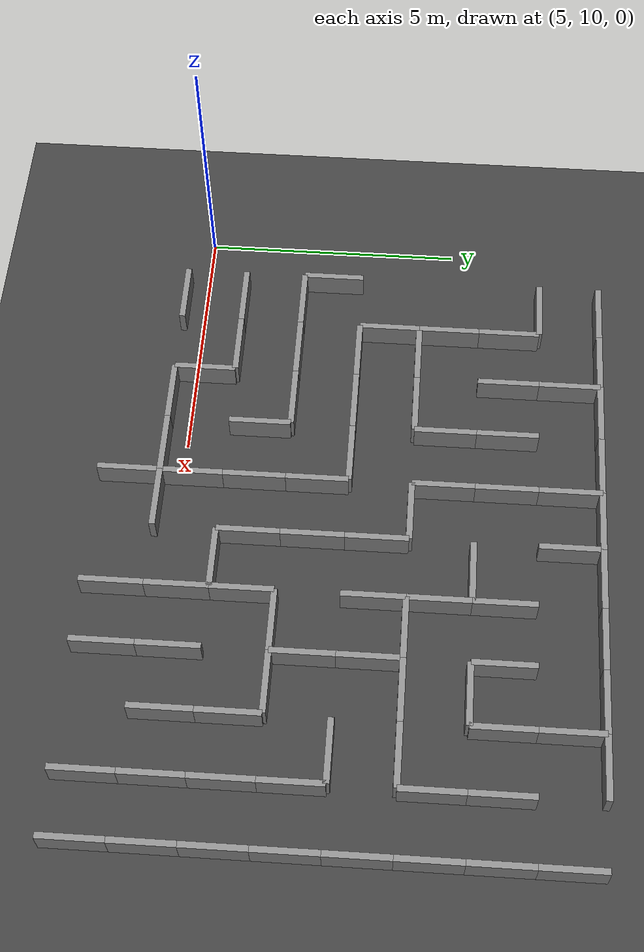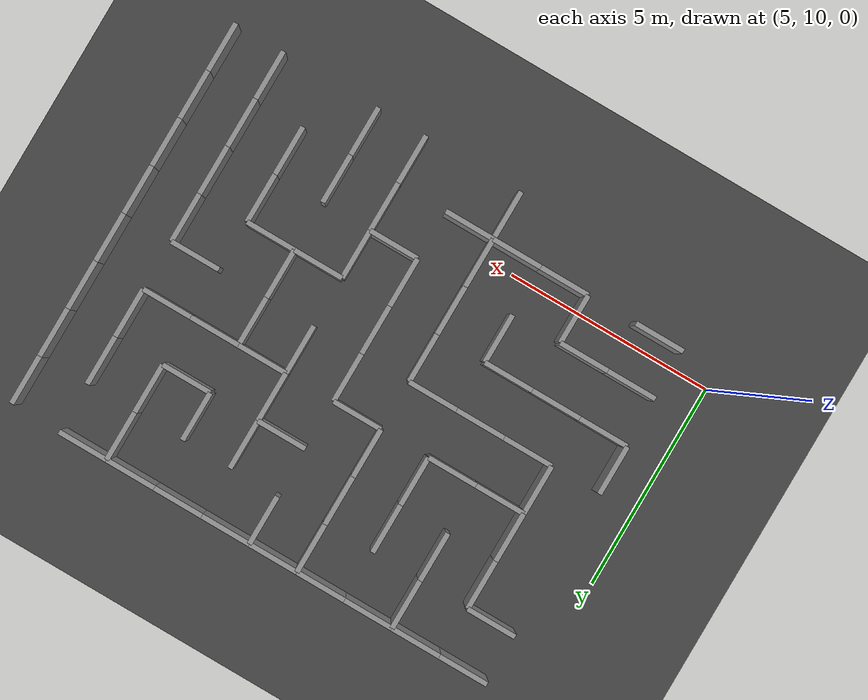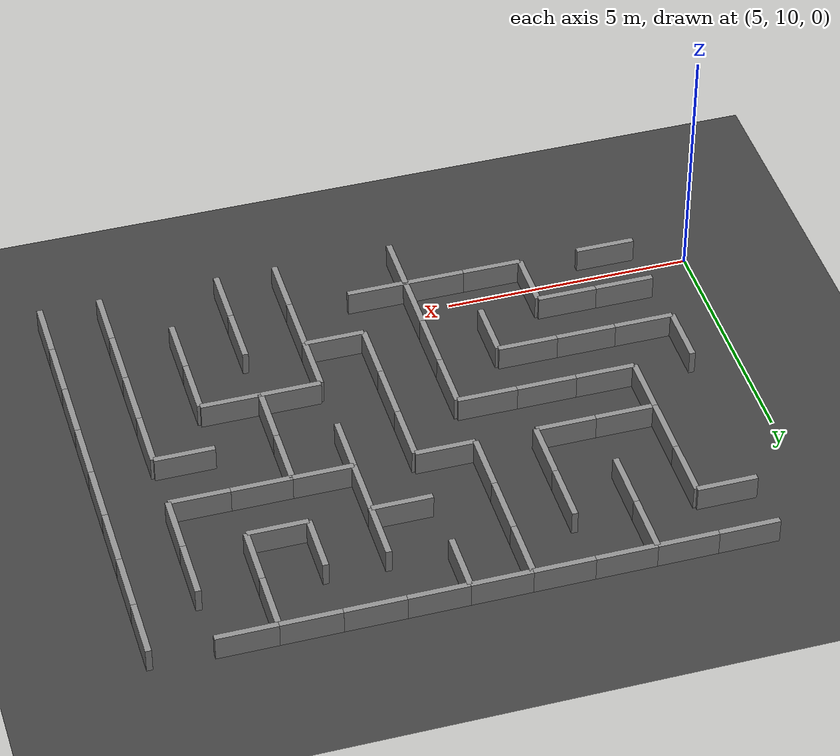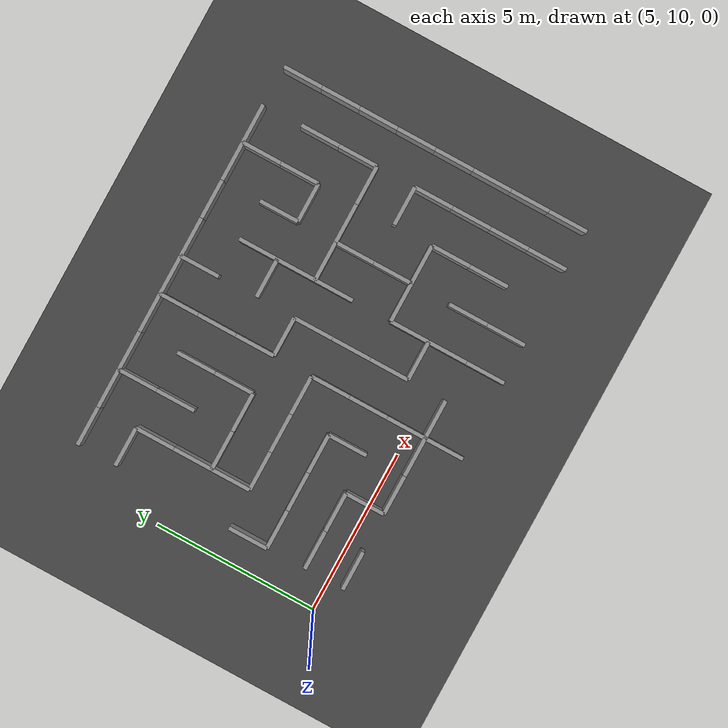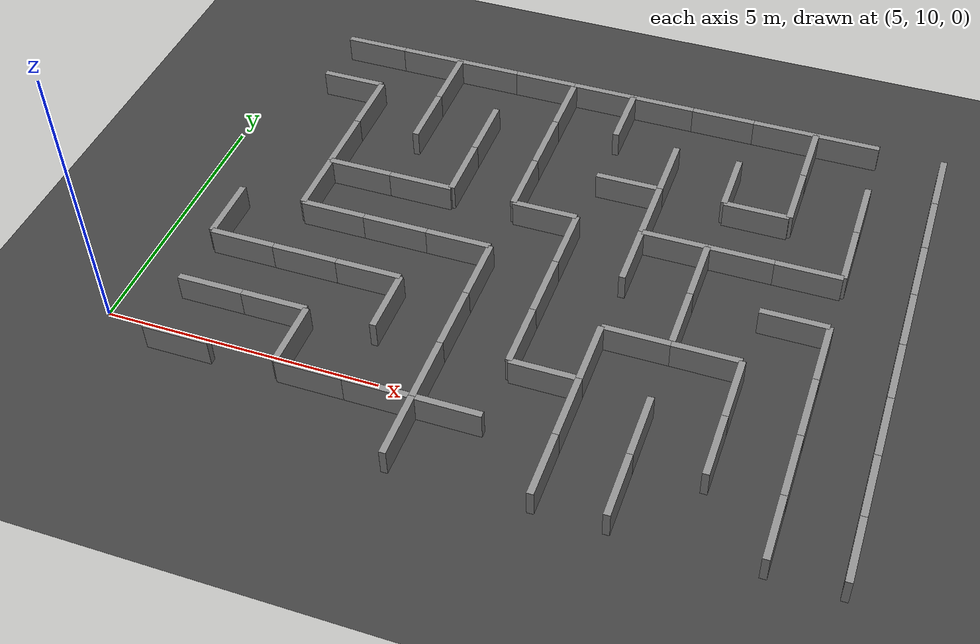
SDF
<sdf version="1.9">
 <world name="maze_world">
  <model name="ground_plane">
   <static>true</static>
   <link name="link">
    <collision name="col">
     <geometry><plane><normal>0 0 1</normal><size>500 500</size></plane></geometry>
     <surface><friction><ode><mu>1.0</mu><mu2>1.0</mu2></ode></friction></surface>
    </collision>
    <visual name="vis">
     <geometry><plane><normal>0 0 1</normal><size>500 500</size></plane></geometry>
     <material><ambient>0.25 0.25 0.25 1</ambient><diffuse>0.25 0.25 0.25 1</diffuse></material>
    </visual>
   </link>
  </model>
  <model name="maze_walls">
   <static>true</static>
   <link name="w0004">
    <pose>6.60000 16.80000 0.25000 0 0 0</pose>
    <collision name="col">
     <geometry><box><size>1.20000 0.12000 0.50000</size></box></geometry>
     <surface><friction><ode><mu>1.0</mu><mu2>1.0</mu2></ode></friction></surface>
    </collision>
    <visual name="vis">
     <geometry><box><size>1.20000 0.12000 0.50000</size></box></geometry>
     <material>
      <ambient>0.55 0.55 0.55 1</ambient>
      <diffuse>0.55 0.55 0.55 1</diffuse>
      <specular>0.1 0.1 0.1 1</specular>
     </material>
    </visual>
   </link>
   <link name="w0005">
    <pose>8.40000 17.40000 0.25000 0 0 0</pose>
    <collision name="col">
     <geometry><box><size>0.12000 1.20000 0.50000</size></box></geometry>
     <surface><friction><ode><mu>1.0</mu><mu2>1.0</mu2></ode></friction></surface>
    </collision>
    <visual name="vis">
     <geometry><box><size>0.12000 1.20000 0.50000</size></box></geometry>
     <material>
      <ambient>0.55 0.55 0.55 1</ambient>
      <diffuse>0.55 0.55 0.55 1</diffuse>
      <specular>0.1 0.1 0.1 1</specular>
     </material>
    </visual>
   </link>
   <link name="w0006">
    <pose>10.80000 17.40000 0.25000 0 0 0</pose>
    <collision name="col">
     <geometry><box><size>0.12000 1.20000 0.50000</size></box></geometry>
     <surface><friction><ode><mu>1.0</mu><mu2>1.0</mu2></ode></friction></surface>
    </collision>
    <visual name="vis">
     <geometry><box><size>0.12000 1.20000 0.50000</size></box></geometry>
     <material>
      <ambient>0.55 0.55 0.55 1</ambient>
      <diffuse>0.55 0.55 0.55 1</diffuse>
      <specular>0.1 0.1 0.1 1</specular>
     </material>
    </visual>
   </link>
   <link name="w0007">
    <pose>12.00000 17.40000 0.25000 0 0 0</pose>
    <collision name="col">
     <geometry><box><size>0.12000 1.20000 0.50000</size></box></geometry>
     <surface><friction><ode><mu>1.0</mu><mu2>1.0</mu2></ode></friction></surface>
    </collision>
    <visual name="vis">
     <geometry><box><size>0.12000 1.20000 0.50000</size></box></geometry>
     <material>
      <ambient>0.55 0.55 0.55 1</ambient>
      <diffuse>0.55 0.55 0.55 1</diffuse>
      <specular>0.1 0.1 0.1 1</specular>
     </material>
    </visual>
   </link>
   <link name="w0008">
    <pose>15.60000 17.40000 0.25000 0 0 0</pose>
    <collision name="col">
     <geometry><box><size>0.12000 1.20000 0.50000</size></box></geometry>
     <surface><friction><ode><mu>1.0</mu><mu2>1.0</mu2></ode></friction></surface>
    </collision>
    <visual name="vis">
     <geometry><box><size>0.12000 1.20000 0.50000</size></box></geometry>
     <material>
      <ambient>0.55 0.55 0.55 1</ambient>
      <diffuse>0.55 0.55 0.55 1</diffuse>
      <specular>0.1 0.1 0.1 1</specular>
     </material>
    </visual>
   </link>
   <link name="w0009">
    <pose>18.00000 17.40000 0.25000 0 0 0</pose>
    <collision name="col">
     <geometry><box><size>0.12000 1.20000 0.50000</size></box></geometry>
     <surface><friction><ode><mu>1.0</mu><mu2>1.0</mu2></ode></friction></surface>
    </collision>
    <visual name="vis">
     <geometry><box><size>0.12000 1.20000 0.50000</size></box></geometry>
     <material>
      <ambient>0.55 0.55 0.55 1</ambient>
      <diffuse>0.55 0.55 0.55 1</diffuse>
      <specular>0.1 0.1 0.1 1</specular>
     </material>
    </visual>
   </link>
   <link name="w0014">
    <pose>7.20000 16.20000 0.25000 0 0 0</pose>
    <collision name="col">
     <geometry><box><size>0.12000 1.20000 0.50000</size></box></geometry>
     <surface><friction><ode><mu>1.0</mu><mu2>1.0</mu2></ode></friction></surface>
    </collision>
    <visual name="vis">
     <geometry><box><size>0.12000 1.20000 0.50000</size></box></geometry>
     <material>
      <ambient>0.55 0.55 0.55 1</ambient>
      <diffuse>0.55 0.55 0.55 1</diffuse>
      <specular>0.1 0.1 0.1 1</specular>
     </material>
    </visual>
   </link>
   <link name="w0015">
    <pose>8.40000 16.20000 0.25000 0 0 0</pose>
    <collision name="col">
     <geometry><box><size>0.12000 1.20000 0.50000</size></box></geometry>
     <surface><friction><ode><mu>1.0</mu><mu2>1.0</mu2></ode></friction></surface>
    </collision>
    <visual name="vis">
     <geometry><box><size>0.12000 1.20000 0.50000</size></box></geometry>
     <material>
      <ambient>0.55 0.55 0.55 1</ambient>
      <diffuse>0.55 0.55 0.55 1</diffuse>
      <specular>0.1 0.1 0.1 1</specular>
     </material>
    </visual>
   </link>
   <link name="w0016">
    <pose>9.60000 16.20000 0.25000 0 0 0</pose>
    <collision name="col">
     <geometry><box><size>0.12000 1.20000 0.50000</size></box></geometry>
     <surface><friction><ode><mu>1.0</mu><mu2>1.0</mu2></ode></friction></surface>
    </collision>
    <visual name="vis">
     <geometry><box><size>0.12000 1.20000 0.50000</size></box></geometry>
     <material>
      <ambient>0.55 0.55 0.55 1</ambient>
      <diffuse>0.55 0.55 0.55 1</diffuse>
      <specular>0.1 0.1 0.1 1</specular>
     </material>
    </visual>
   </link>
   <link name="w0017">
    <pose>10.80000 16.20000 0.25000 0 0 0</pose>
    <collision name="col">
     <geometry><box><size>0.12000 1.20000 0.50000</size></box></geometry>
     <surface><friction><ode><mu>1.0</mu><mu2>1.0</mu2></ode></friction></surface>
    </collision>
    <visual name="vis">
     <geometry><box><size>0.12000 1.20000 0.50000</size></box></geometry>
     <material>
      <ambient>0.55 0.55 0.55 1</ambient>
      <diffuse>0.55 0.55 0.55 1</diffuse>
      <specular>0.1 0.1 0.1 1</specular>
     </material>
    </visual>
   </link>
   <link name="w0018">
    <pose>12.60000 15.60000 0.25000 0 0 0</pose>
    <collision name="col">
     <geometry><box><size>1.20000 0.12000 0.50000</size></box></geometry>
     <surface><friction><ode><mu>1.0</mu><mu2>1.0</mu2></ode></friction></surface>
    </collision>
    <visual name="vis">
     <geometry><box><size>1.20000 0.12000 0.50000</size></box></geometry>
     <material>
      <ambient>0.55 0.55 0.55 1</ambient>
      <diffuse>0.55 0.55 0.55 1</diffuse>
      <specular>0.1 0.1 0.1 1</specular>
     </material>
    </visual>
   </link>
   <link name="w0019">
    <pose>13.20000 16.20000 0.25000 0 0 0</pose>
    <collision name="col">
     <geometry><box><size>0.12000 1.20000 0.50000</size></box></geometry>
     <surface><friction><ode><mu>1.0</mu><mu2>1.0</mu2></ode></friction></surface>
    </collision>
    <visual name="vis">
     <geometry><box><size>0.12000 1.20000 0.50000</size></box></geometry>
     <material>
      <ambient>0.55 0.55 0.55 1</ambient>
      <diffuse>0.55 0.55 0.55 1</diffuse>
      <specular>0.1 0.1 0.1 1</specular>
     </material>
    </visual>
   </link>
   <link name="w0020">
    <pose>14.40000 16.20000 0.25000 0 0 0</pose>
    <collision name="col">
     <geometry><box><size>0.12000 1.20000 0.50000</size></box></geometry>
     <surface><friction><ode><mu>1.0</mu><mu2>1.0</mu2></ode></friction></surface>
    </collision>
    <visual name="vis">
     <geometry><box><size>0.12000 1.20000 0.50000</size></box></geometry>
     <material>
      <ambient>0.55 0.55 0.55 1</ambient>
      <diffuse>0.55 0.55 0.55 1</diffuse>
      <specular>0.1 0.1 0.1 1</specular>
     </material>
    </visual>
   </link>
   <link name="w0021">
    <pose>15.00000 15.60000 0.25000 0 0 0</pose>
    <collision name="col">
     <geometry><box><size>1.20000 0.12000 0.50000</size></box></geometry>
     <surface><friction><ode><mu>1.0</mu><mu2>1.0</mu2></ode></friction></surface>
    </collision>
    <visual name="vis">
     <geometry><box><size>1.20000 0.12000 0.50000</size></box></geometry>
     <material>
      <ambient>0.55 0.55 0.55 1</ambient>
      <diffuse>0.55 0.55 0.55 1</diffuse>
      <specular>0.1 0.1 0.1 1</specular>
     </material>
    </visual>
   </link>
   <link name="w0022">
    <pose>15.60000 16.20000 0.25000 0 0 0</pose>
    <collision name="col">
     <geometry><box><size>0.12000 1.20000 0.50000</size></box></geometry>
     <surface><friction><ode><mu>1.0</mu><mu2>1.0</mu2></ode></friction></surface>
    </collision>
    <visual name="vis">
     <geometry><box><size>0.12000 1.20000 0.50000</size></box></geometry>
     <material>
      <ambient>0.55 0.55 0.55 1</ambient>
      <diffuse>0.55 0.55 0.55 1</diffuse>
      <specular>0.1 0.1 0.1 1</specular>
     </material>
    </visual>
   </link>
   <link name="w0023">
    <pose>16.80000 16.20000 0.25000 0 0 0</pose>
    <collision name="col">
     <geometry><box><size>0.12000 1.20000 0.50000</size></box></geometry>
     <surface><friction><ode><mu>1.0</mu><mu2>1.0</mu2></ode></friction></surface>
    </collision>
    <visual name="vis">
     <geometry><box><size>0.12000 1.20000 0.50000</size></box></geometry>
     <material>
      <ambient>0.55 0.55 0.55 1</ambient>
      <diffuse>0.55 0.55 0.55 1</diffuse>
      <specular>0.1 0.1 0.1 1</specular>
     </material>
    </visual>
   </link>
   <link name="w0024">
    <pose>18.00000 16.20000 0.25000 0 0 0</pose>
    <collision name="col">
     <geometry><box><size>0.12000 1.20000 0.50000</size></box></geometry>
     <surface><friction><ode><mu>1.0</mu><mu2>1.0</mu2></ode></friction></surface>
    </collision>
    <visual name="vis">
     <geometry><box><size>0.12000 1.20000 0.50000</size></box></geometry>
     <material>
      <ambient>0.55 0.55 0.55 1</ambient>
      <diffuse>0.55 0.55 0.55 1</diffuse>
      <specular>0.1 0.1 0.1 1</specular>
     </material>
    </visual>
   </link>
   <link name="w0030">
    <pose>7.20000 15.00000 0.25000 0 0 0</pose>
    <collision name="col">
     <geometry><box><size>0.12000 1.20000 0.50000</size></box></geometry>
     <surface><friction><ode><mu>1.0</mu><mu2>1.0</mu2></ode></friction></surface>
    </collision>
    <visual name="vis">
     <geometry><box><size>0.12000 1.20000 0.50000</size></box></geometry>
     <material>
      <ambient>0.55 0.55 0.55 1</ambient>
      <diffuse>0.55 0.55 0.55 1</diffuse>
      <specular>0.1 0.1 0.1 1</specular>
     </material>
    </visual>
   </link>
   <link name="w0031">
    <pose>7.80000 14.40000 0.25000 0 0 0</pose>
    <collision name="col">
     <geometry><box><size>1.20000 0.12000 0.50000</size></box></geometry>
     <surface><friction><ode><mu>1.0</mu><mu2>1.0</mu2></ode></friction></surface>
    </collision>
    <visual name="vis">
     <geometry><box><size>1.20000 0.12000 0.50000</size></box></geometry>
     <material>
      <ambient>0.55 0.55 0.55 1</ambient>
      <diffuse>0.55 0.55 0.55 1</diffuse>
      <specular>0.1 0.1 0.1 1</specular>
     </material>
    </visual>
   </link>
   <link name="w0032">
    <pose>9.00000 14.40000 0.25000 0 0 0</pose>
    <collision name="col">
     <geometry><box><size>1.20000 0.12000 0.50000</size></box></geometry>
     <surface><friction><ode><mu>1.0</mu><mu2>1.0</mu2></ode></friction></surface>
    </collision>
    <visual name="vis">
     <geometry><box><size>1.20000 0.12000 0.50000</size></box></geometry>
     <material>
      <ambient>0.55 0.55 0.55 1</ambient>
      <diffuse>0.55 0.55 0.55 1</diffuse>
      <specular>0.1 0.1 0.1 1</specular>
     </material>
    </visual>
   </link>
   <link name="w0033">
    <pose>9.60000 15.00000 0.25000 0 0 0</pose>
    <collision name="col">
     <geometry><box><size>0.12000 1.20000 0.50000</size></box></geometry>
     <surface><friction><ode><mu>1.0</mu><mu2>1.0</mu2></ode></friction></surface>
    </collision>
    <visual name="vis">
     <geometry><box><size>0.12000 1.20000 0.50000</size></box></geometry>
     <material>
      <ambient>0.55 0.55 0.55 1</ambient>
      <diffuse>0.55 0.55 0.55 1</diffuse>
      <specular>0.1 0.1 0.1 1</specular>
     </material>
    </visual>
   </link>
   <link name="w0034">
    <pose>10.80000 15.00000 0.25000 0 0 0</pose>
    <collision name="col">
     <geometry><box><size>0.12000 1.20000 0.50000</size></box></geometry>
     <surface><friction><ode><mu>1.0</mu><mu2>1.0</mu2></ode></friction></surface>
    </collision>
    <visual name="vis">
     <geometry><box><size>0.12000 1.20000 0.50000</size></box></geometry>
     <material>
      <ambient>0.55 0.55 0.55 1</ambient>
      <diffuse>0.55 0.55 0.55 1</diffuse>
      <specular>0.1 0.1 0.1 1</specular>
     </material>
    </visual>
   </link>
   <link name="w0035">
    <pose>11.40000 14.40000 0.25000 0 0 0</pose>
    <collision name="col">
     <geometry><box><size>1.20000 0.12000 0.50000</size></box></geometry>
     <surface><friction><ode><mu>1.0</mu><mu2>1.0</mu2></ode></friction></surface>
    </collision>
    <visual name="vis">
     <geometry><box><size>1.20000 0.12000 0.50000</size></box></geometry>
     <material>
      <ambient>0.55 0.55 0.55 1</ambient>
      <diffuse>0.55 0.55 0.55 1</diffuse>
      <specular>0.1 0.1 0.1 1</specular>
     </material>
    </visual>
   </link>
   <link name="w0036">
    <pose>13.20000 15.00000 0.25000 0 0 0</pose>
    <collision name="col">
     <geometry><box><size>0.12000 1.20000 0.50000</size></box></geometry>
     <surface><friction><ode><mu>1.0</mu><mu2>1.0</mu2></ode></friction></surface>
    </collision>
    <visual name="vis">
     <geometry><box><size>0.12000 1.20000 0.50000</size></box></geometry>
     <material>
      <ambient>0.55 0.55 0.55 1</ambient>
      <diffuse>0.55 0.55 0.55 1</diffuse>
      <specular>0.1 0.1 0.1 1</specular>
     </material>
    </visual>
   </link>
   <link name="w0037">
    <pose>13.80000 14.40000 0.25000 0 0 0</pose>
    <collision name="col">
     <geometry><box><size>1.20000 0.12000 0.50000</size></box></geometry>
     <surface><friction><ode><mu>1.0</mu><mu2>1.0</mu2></ode></friction></surface>
    </collision>
    <visual name="vis">
     <geometry><box><size>1.20000 0.12000 0.50000</size></box></geometry>
     <material>
      <ambient>0.55 0.55 0.55 1</ambient>
      <diffuse>0.55 0.55 0.55 1</diffuse>
      <specular>0.1 0.1 0.1 1</specular>
     </material>
    </visual>
   </link>
   <link name="w0038">
    <pose>15.00000 14.40000 0.25000 0 0 0</pose>
    <collision name="col">
     <geometry><box><size>1.20000 0.12000 0.50000</size></box></geometry>
     <surface><friction><ode><mu>1.0</mu><mu2>1.0</mu2></ode></friction></surface>
    </collision>
    <visual name="vis">
     <geometry><box><size>1.20000 0.12000 0.50000</size></box></geometry>
     <material>
      <ambient>0.55 0.55 0.55 1</ambient>
      <diffuse>0.55 0.55 0.55 1</diffuse>
      <specular>0.1 0.1 0.1 1</specular>
     </material>
    </visual>
   </link>
   <link name="w0039">
    <pose>16.20000 14.40000 0.25000 0 0 0</pose>
    <collision name="col">
     <geometry><box><size>1.20000 0.12000 0.50000</size></box></geometry>
     <surface><friction><ode><mu>1.0</mu><mu2>1.0</mu2></ode></friction></surface>
    </collision>
    <visual name="vis">
     <geometry><box><size>1.20000 0.12000 0.50000</size></box></geometry>
     <material>
      <ambient>0.55 0.55 0.55 1</ambient>
      <diffuse>0.55 0.55 0.55 1</diffuse>
      <specular>0.1 0.1 0.1 1</specular>
     </material>
    </visual>
   </link>
   <link name="w0040">
    <pose>16.80000 15.00000 0.25000 0 0 0</pose>
    <collision name="col">
     <geometry><box><size>0.12000 1.20000 0.50000</size></box></geometry>
     <surface><friction><ode><mu>1.0</mu><mu2>1.0</mu2></ode></friction></surface>
    </collision>
    <visual name="vis">
     <geometry><box><size>0.12000 1.20000 0.50000</size></box></geometry>
     <material>
      <ambient>0.55 0.55 0.55 1</ambient>
      <diffuse>0.55 0.55 0.55 1</diffuse>
      <specular>0.1 0.1 0.1 1</specular>
     </material>
    </visual>
   </link>
   <link name="w0041">
    <pose>18.00000 15.00000 0.25000 0 0 0</pose>
    <collision name="col">
     <geometry><box><size>0.12000 1.20000 0.50000</size></box></geometry>
     <surface><friction><ode><mu>1.0</mu><mu2>1.0</mu2></ode></friction></surface>
    </collision>
    <visual name="vis">
     <geometry><box><size>0.12000 1.20000 0.50000</size></box></geometry>
     <material>
      <ambient>0.55 0.55 0.55 1</ambient>
      <diffuse>0.55 0.55 0.55 1</diffuse>
      <specular>0.1 0.1 0.1 1</specular>
     </material>
    </visual>
   </link>
   <link name="w0047">
    <pose>7.20000 13.80000 0.25000 0 0 0</pose>
    <collision name="col">
     <geometry><box><size>0.12000 1.20000 0.50000</size></box></geometry>
     <surface><friction><ode><mu>1.0</mu><mu2>1.0</mu2></ode></friction></surface>
    </collision>
    <visual name="vis">
     <geometry><box><size>0.12000 1.20000 0.50000</size></box></geometry>
     <material>
      <ambient>0.55 0.55 0.55 1</ambient>
      <diffuse>0.55 0.55 0.55 1</diffuse>
      <specular>0.1 0.1 0.1 1</specular>
     </material>
    </visual>
   </link>
   <link name="w0048">
    <pose>7.80000 13.20000 0.25000 0 0 0</pose>
    <collision name="col">
     <geometry><box><size>1.20000 0.12000 0.50000</size></box></geometry>
     <surface><friction><ode><mu>1.0</mu><mu2>1.0</mu2></ode></friction></surface>
    </collision>
    <visual name="vis">
     <geometry><box><size>1.20000 0.12000 0.50000</size></box></geometry>
     <material>
      <ambient>0.55 0.55 0.55 1</ambient>
      <diffuse>0.55 0.55 0.55 1</diffuse>
      <specular>0.1 0.1 0.1 1</specular>
     </material>
    </visual>
   </link>
   <link name="w0049">
    <pose>9.00000 13.20000 0.25000 0 0 0</pose>
    <collision name="col">
     <geometry><box><size>1.20000 0.12000 0.50000</size></box></geometry>
     <surface><friction><ode><mu>1.0</mu><mu2>1.0</mu2></ode></friction></surface>
    </collision>
    <visual name="vis">
     <geometry><box><size>1.20000 0.12000 0.50000</size></box></geometry>
     <material>
      <ambient>0.55 0.55 0.55 1</ambient>
      <diffuse>0.55 0.55 0.55 1</diffuse>
      <specular>0.1 0.1 0.1 1</specular>
     </material>
    </visual>
   </link>
   <link name="w0050">
    <pose>10.20000 13.20000 0.25000 0 0 0</pose>
    <collision name="col">
     <geometry><box><size>1.20000 0.12000 0.50000</size></box></geometry>
     <surface><friction><ode><mu>1.0</mu><mu2>1.0</mu2></ode></friction></surface>
    </collision>
    <visual name="vis">
     <geometry><box><size>1.20000 0.12000 0.50000</size></box></geometry>
     <material>
      <ambient>0.55 0.55 0.55 1</ambient>
      <diffuse>0.55 0.55 0.55 1</diffuse>
      <specular>0.1 0.1 0.1 1</specular>
     </material>
    </visual>
   </link>
   <link name="w0051">
    <pose>12.00000 13.80000 0.25000 0 0 0</pose>
    <collision name="col">
     <geometry><box><size>0.12000 1.20000 0.50000</size></box></geometry>
     <surface><friction><ode><mu>1.0</mu><mu2>1.0</mu2></ode></friction></surface>
    </collision>
    <visual name="vis">
     <geometry><box><size>0.12000 1.20000 0.50000</size></box></geometry>
     <material>
      <ambient>0.55 0.55 0.55 1</ambient>
      <diffuse>0.55 0.55 0.55 1</diffuse>
      <specular>0.1 0.1 0.1 1</specular>
     </material>
    </visual>
   </link>
   <link name="w0052">
    <pose>13.20000 13.80000 0.25000 0 0 0</pose>
    <collision name="col">
     <geometry><box><size>0.12000 1.20000 0.50000</size></box></geometry>
     <surface><friction><ode><mu>1.0</mu><mu2>1.0</mu2></ode></friction></surface>
    </collision>
    <visual name="vis">
     <geometry><box><size>0.12000 1.20000 0.50000</size></box></geometry>
     <material>
      <ambient>0.55 0.55 0.55 1</ambient>
      <diffuse>0.55 0.55 0.55 1</diffuse>
      <specular>0.1 0.1 0.1 1</specular>
     </material>
    </visual>
   </link>
   <link name="w0053">
    <pose>14.40000 13.80000 0.25000 0 0 0</pose>
    <collision name="col">
     <geometry><box><size>0.12000 1.20000 0.50000</size></box></geometry>
     <surface><friction><ode><mu>1.0</mu><mu2>1.0</mu2></ode></friction></surface>
    </collision>
    <visual name="vis">
     <geometry><box><size>0.12000 1.20000 0.50000</size></box></geometry>
     <material>
      <ambient>0.55 0.55 0.55 1</ambient>
      <diffuse>0.55 0.55 0.55 1</diffuse>
      <specular>0.1 0.1 0.1 1</specular>
     </material>
    </visual>
   </link>
   <link name="w0054">
    <pose>16.20000 13.20000 0.25000 0 0 0</pose>
    <collision name="col">
     <geometry><box><size>1.20000 0.12000 0.50000</size></box></geometry>
     <surface><friction><ode><mu>1.0</mu><mu2>1.0</mu2></ode></friction></surface>
    </collision>
    <visual name="vis">
     <geometry><box><size>1.20000 0.12000 0.50000</size></box></geometry>
     <material>
      <ambient>0.55 0.55 0.55 1</ambient>
      <diffuse>0.55 0.55 0.55 1</diffuse>
      <specular>0.1 0.1 0.1 1</specular>
     </material>
    </visual>
   </link>
   <link name="w0055">
    <pose>18.00000 13.80000 0.25000 0 0 0</pose>
    <collision name="col">
     <geometry><box><size>0.12000 1.20000 0.50000</size></box></geometry>
     <surface><friction><ode><mu>1.0</mu><mu2>1.0</mu2></ode></friction></surface>
    </collision>
    <visual name="vis">
     <geometry><box><size>0.12000 1.20000 0.50000</size></box></geometry>
     <material>
      <ambient>0.55 0.55 0.55 1</ambient>
      <diffuse>0.55 0.55 0.55 1</diffuse>
      <specular>0.1 0.1 0.1 1</specular>
     </material>
    </visual>
   </link>
   <link name="w0061">
    <pose>6.00000 12.60000 0.25000 0 0 0</pose>
    <collision name="col">
     <geometry><box><size>0.12000 1.20000 0.50000</size></box></geometry>
     <surface><friction><ode><mu>1.0</mu><mu2>1.0</mu2></ode></friction></surface>
    </collision>
    <visual name="vis">
     <geometry><box><size>0.12000 1.20000 0.50000</size></box></geometry>
     <material>
      <ambient>0.55 0.55 0.55 1</ambient>
      <diffuse>0.55 0.55 0.55 1</diffuse>
      <specular>0.1 0.1 0.1 1</specular>
     </material>
    </visual>
   </link>
   <link name="w0062">
    <pose>6.60000 12.00000 0.25000 0 0 0</pose>
    <collision name="col">
     <geometry><box><size>1.20000 0.12000 0.50000</size></box></geometry>
     <surface><friction><ode><mu>1.0</mu><mu2>1.0</mu2></ode></friction></surface>
    </collision>
    <visual name="vis">
     <geometry><box><size>1.20000 0.12000 0.50000</size></box></geometry>
     <material>
      <ambient>0.55 0.55 0.55 1</ambient>
      <diffuse>0.55 0.55 0.55 1</diffuse>
      <specular>0.1 0.1 0.1 1</specular>
     </material>
    </visual>
   </link>
   <link name="w0063">
    <pose>7.80000 12.00000 0.25000 0 0 0</pose>
    <collision name="col">
     <geometry><box><size>1.20000 0.12000 0.50000</size></box></geometry>
     <surface><friction><ode><mu>1.0</mu><mu2>1.0</mu2></ode></friction></surface>
    </collision>
    <visual name="vis">
     <geometry><box><size>1.20000 0.12000 0.50000</size></box></geometry>
     <material>
      <ambient>0.55 0.55 0.55 1</ambient>
      <diffuse>0.55 0.55 0.55 1</diffuse>
      <specular>0.1 0.1 0.1 1</specular>
     </material>
    </visual>
   </link>
   <link name="w0064">
    <pose>9.00000 12.00000 0.25000 0 0 0</pose>
    <collision name="col">
     <geometry><box><size>1.20000 0.12000 0.50000</size></box></geometry>
     <surface><friction><ode><mu>1.0</mu><mu2>1.0</mu2></ode></friction></surface>
    </collision>
    <visual name="vis">
     <geometry><box><size>1.20000 0.12000 0.50000</size></box></geometry>
     <material>
      <ambient>0.55 0.55 0.55 1</ambient>
      <diffuse>0.55 0.55 0.55 1</diffuse>
      <specular>0.1 0.1 0.1 1</specular>
     </material>
    </visual>
   </link>
   <link name="w0065">
    <pose>10.80000 12.60000 0.25000 0 0 0</pose>
    <collision name="col">
     <geometry><box><size>0.12000 1.20000 0.50000</size></box></geometry>
     <surface><friction><ode><mu>1.0</mu><mu2>1.0</mu2></ode></friction></surface>
    </collision>
    <visual name="vis">
     <geometry><box><size>0.12000 1.20000 0.50000</size></box></geometry>
     <material>
      <ambient>0.55 0.55 0.55 1</ambient>
      <diffuse>0.55 0.55 0.55 1</diffuse>
      <specular>0.1 0.1 0.1 1</specular>
     </material>
    </visual>
   </link>
   <link name="w0066">
    <pose>12.00000 12.60000 0.25000 0 0 0</pose>
    <collision name="col">
     <geometry><box><size>0.12000 1.20000 0.50000</size></box></geometry>
     <surface><friction><ode><mu>1.0</mu><mu2>1.0</mu2></ode></friction></surface>
    </collision>
    <visual name="vis">
     <geometry><box><size>0.12000 1.20000 0.50000</size></box></geometry>
     <material>
      <ambient>0.55 0.55 0.55 1</ambient>
      <diffuse>0.55 0.55 0.55 1</diffuse>
      <specular>0.1 0.1 0.1 1</specular>
     </material>
    </visual>
   </link>
   <link name="w0067">
    <pose>13.80000 12.00000 0.25000 0 0 0</pose>
    <collision name="col">
     <geometry><box><size>1.20000 0.12000 0.50000</size></box></geometry>
     <surface><friction><ode><mu>1.0</mu><mu2>1.0</mu2></ode></friction></surface>
    </collision>
    <visual name="vis">
     <geometry><box><size>1.20000 0.12000 0.50000</size></box></geometry>
     <material>
      <ambient>0.55 0.55 0.55 1</ambient>
      <diffuse>0.55 0.55 0.55 1</diffuse>
      <specular>0.1 0.1 0.1 1</specular>
     </material>
    </visual>
   </link>
   <link name="w0068">
    <pose>14.40000 12.60000 0.25000 0 0 0</pose>
    <collision name="col">
     <geometry><box><size>0.12000 1.20000 0.50000</size></box></geometry>
     <surface><friction><ode><mu>1.0</mu><mu2>1.0</mu2></ode></friction></surface>
    </collision>
    <visual name="vis">
     <geometry><box><size>0.12000 1.20000 0.50000</size></box></geometry>
     <material>
      <ambient>0.55 0.55 0.55 1</ambient>
      <diffuse>0.55 0.55 0.55 1</diffuse>
      <specular>0.1 0.1 0.1 1</specular>
     </material>
    </visual>
   </link>
   <link name="w0069">
    <pose>15.00000 12.00000 0.25000 0 0 0</pose>
    <collision name="col">
     <geometry><box><size>1.20000 0.12000 0.50000</size></box></geometry>
     <surface><friction><ode><mu>1.0</mu><mu2>1.0</mu2></ode></friction></surface>
    </collision>
    <visual name="vis">
     <geometry><box><size>1.20000 0.12000 0.50000</size></box></geometry>
     <material>
      <ambient>0.55 0.55 0.55 1</ambient>
      <diffuse>0.55 0.55 0.55 1</diffuse>
      <specular>0.1 0.1 0.1 1</specular>
     </material>
    </visual>
   </link>
   <link name="w0070">
    <pose>16.80000 12.60000 0.25000 0 0 0</pose>
    <collision name="col">
     <geometry><box><size>0.12000 1.20000 0.50000</size></box></geometry>
     <surface><friction><ode><mu>1.0</mu><mu2>1.0</mu2></ode></friction></surface>
    </collision>
    <visual name="vis">
     <geometry><box><size>0.12000 1.20000 0.50000</size></box></geometry>
     <material>
      <ambient>0.55 0.55 0.55 1</ambient>
      <diffuse>0.55 0.55 0.55 1</diffuse>
      <specular>0.1 0.1 0.1 1</specular>
     </material>
    </visual>
   </link>
   <link name="w0071">
    <pose>18.00000 12.60000 0.25000 0 0 0</pose>
    <collision name="col">
     <geometry><box><size>0.12000 1.20000 0.50000</size></box></geometry>
     <surface><friction><ode><mu>1.0</mu><mu2>1.0</mu2></ode></friction></surface>
    </collision>
    <visual name="vis">
     <geometry><box><size>0.12000 1.20000 0.50000</size></box></geometry>
     <material>
      <ambient>0.55 0.55 0.55 1</ambient>
      <diffuse>0.55 0.55 0.55 1</diffuse>
      <specular>0.1 0.1 0.1 1</specular>
     </material>
    </visual>
   </link>
   <link name="w0077">
    <pose>6.60000 10.80000 0.25000 0 0 0</pose>
    <collision name="col">
     <geometry><box><size>1.20000 0.12000 0.50000</size></box></geometry>
     <surface><friction><ode><mu>1.0</mu><mu2>1.0</mu2></ode></friction></surface>
    </collision>
    <visual name="vis">
     <geometry><box><size>1.20000 0.12000 0.50000</size></box></geometry>
     <material>
      <ambient>0.55 0.55 0.55 1</ambient>
      <diffuse>0.55 0.55 0.55 1</diffuse>
      <specular>0.1 0.1 0.1 1</specular>
     </material>
    </visual>
   </link>
   <link name="w0078">
    <pose>7.80000 10.80000 0.25000 0 0 0</pose>
    <collision name="col">
     <geometry><box><size>1.20000 0.12000 0.50000</size></box></geometry>
     <surface><friction><ode><mu>1.0</mu><mu2>1.0</mu2></ode></friction></surface>
    </collision>
    <visual name="vis">
     <geometry><box><size>1.20000 0.12000 0.50000</size></box></geometry>
     <material>
      <ambient>0.55 0.55 0.55 1</ambient>
      <diffuse>0.55 0.55 0.55 1</diffuse>
      <specular>0.1 0.1 0.1 1</specular>
     </material>
    </visual>
   </link>
   <link name="w0079">
    <pose>9.60000 11.40000 0.25000 0 0 0</pose>
    <collision name="col">
     <geometry><box><size>0.12000 1.20000 0.50000</size></box></geometry>
     <surface><friction><ode><mu>1.0</mu><mu2>1.0</mu2></ode></friction></surface>
    </collision>
    <visual name="vis">
     <geometry><box><size>0.12000 1.20000 0.50000</size></box></geometry>
     <material>
      <ambient>0.55 0.55 0.55 1</ambient>
      <diffuse>0.55 0.55 0.55 1</diffuse>
      <specular>0.1 0.1 0.1 1</specular>
     </material>
    </visual>
   </link>
   <link name="w0080">
    <pose>10.80000 11.40000 0.25000 0 0 0</pose>
    <collision name="col">
     <geometry><box><size>0.12000 1.20000 0.50000</size></box></geometry>
     <surface><friction><ode><mu>1.0</mu><mu2>1.0</mu2></ode></friction></surface>
    </collision>
    <visual name="vis">
     <geometry><box><size>0.12000 1.20000 0.50000</size></box></geometry>
     <material>
      <ambient>0.55 0.55 0.55 1</ambient>
      <diffuse>0.55 0.55 0.55 1</diffuse>
      <specular>0.1 0.1 0.1 1</specular>
     </material>
    </visual>
   </link>
   <link name="w0081">
    <pose>12.00000 11.40000 0.25000 0 0 0</pose>
    <collision name="col">
     <geometry><box><size>0.12000 1.20000 0.50000</size></box></geometry>
     <surface><friction><ode><mu>1.0</mu><mu2>1.0</mu2></ode></friction></surface>
    </collision>
    <visual name="vis">
     <geometry><box><size>0.12000 1.20000 0.50000</size></box></geometry>
     <material>
      <ambient>0.55 0.55 0.55 1</ambient>
      <diffuse>0.55 0.55 0.55 1</diffuse>
      <specular>0.1 0.1 0.1 1</specular>
     </material>
    </visual>
   </link>
   <link name="w0082">
    <pose>12.60000 10.80000 0.25000 0 0 0</pose>
    <collision name="col">
     <geometry><box><size>1.20000 0.12000 0.50000</size></box></geometry>
     <surface><friction><ode><mu>1.0</mu><mu2>1.0</mu2></ode></friction></surface>
    </collision>
    <visual name="vis">
     <geometry><box><size>1.20000 0.12000 0.50000</size></box></geometry>
     <material>
      <ambient>0.55 0.55 0.55 1</ambient>
      <diffuse>0.55 0.55 0.55 1</diffuse>
      <specular>0.1 0.1 0.1 1</specular>
     </material>
    </visual>
   </link>
   <link name="w0083">
    <pose>13.20000 11.40000 0.25000 0 0 0</pose>
    <collision name="col">
     <geometry><box><size>0.12000 1.20000 0.50000</size></box></geometry>
     <surface><friction><ode><mu>1.0</mu><mu2>1.0</mu2></ode></friction></surface>
    </collision>
    <visual name="vis">
     <geometry><box><size>0.12000 1.20000 0.50000</size></box></geometry>
     <material>
      <ambient>0.55 0.55 0.55 1</ambient>
      <diffuse>0.55 0.55 0.55 1</diffuse>
      <specular>0.1 0.1 0.1 1</specular>
     </material>
    </visual>
   </link>
   <link name="w0084">
    <pose>15.60000 11.40000 0.25000 0 0 0</pose>
    <collision name="col">
     <geometry><box><size>0.12000 1.20000 0.50000</size></box></geometry>
     <surface><friction><ode><mu>1.0</mu><mu2>1.0</mu2></ode></friction></surface>
    </collision>
    <visual name="vis">
     <geometry><box><size>0.12000 1.20000 0.50000</size></box></geometry>
     <material>
      <ambient>0.55 0.55 0.55 1</ambient>
      <diffuse>0.55 0.55 0.55 1</diffuse>
      <specular>0.1 0.1 0.1 1</specular>
     </material>
    </visual>
   </link>
   <link name="w0085">
    <pose>16.80000 11.40000 0.25000 0 0 0</pose>
    <collision name="col">
     <geometry><box><size>0.12000 1.20000 0.50000</size></box></geometry>
     <surface><friction><ode><mu>1.0</mu><mu2>1.0</mu2></ode></friction></surface>
    </collision>
    <visual name="vis">
     <geometry><box><size>0.12000 1.20000 0.50000</size></box></geometry>
     <material>
      <ambient>0.55 0.55 0.55 1</ambient>
      <diffuse>0.55 0.55 0.55 1</diffuse>
      <specular>0.1 0.1 0.1 1</specular>
     </material>
    </visual>
   </link>
   <link name="w0086">
    <pose>18.00000 11.40000 0.25000 0 0 0</pose>
    <collision name="col">
     <geometry><box><size>0.12000 1.20000 0.50000</size></box></geometry>
     <surface><friction><ode><mu>1.0</mu><mu2>1.0</mu2></ode></friction></surface>
    </collision>
    <visual name="vis">
     <geometry><box><size>0.12000 1.20000 0.50000</size></box></geometry>
     <material>
      <ambient>0.55 0.55 0.55 1</ambient>
      <diffuse>0.55 0.55 0.55 1</diffuse>
      <specular>0.1 0.1 0.1 1</specular>
     </material>
    </visual>
   </link>
   <link name="w0091">
    <pose>6.60000 9.60000 0.25000 0 0 0</pose>
    <collision name="col">
     <geometry><box><size>1.20000 0.12000 0.50000</size></box></geometry>
     <surface><friction><ode><mu>1.0</mu><mu2>1.0</mu2></ode></friction></surface>
    </collision>
    <visual name="vis">
     <geometry><box><size>1.20000 0.12000 0.50000</size></box></geometry>
     <material>
      <ambient>0.55 0.55 0.55 1</ambient>
      <diffuse>0.55 0.55 0.55 1</diffuse>
      <specular>0.1 0.1 0.1 1</specular>
     </material>
    </visual>
   </link>
   <link name="w0092">
    <pose>8.40000 10.20000 0.25000 0 0 0</pose>
    <collision name="col">
     <geometry><box><size>0.12000 1.20000 0.50000</size></box></geometry>
     <surface><friction><ode><mu>1.0</mu><mu2>1.0</mu2></ode></friction></surface>
    </collision>
    <visual name="vis">
     <geometry><box><size>0.12000 1.20000 0.50000</size></box></geometry>
     <material>
      <ambient>0.55 0.55 0.55 1</ambient>
      <diffuse>0.55 0.55 0.55 1</diffuse>
      <specular>0.1 0.1 0.1 1</specular>
     </material>
    </visual>
   </link>
   <link name="w0093">
    <pose>9.00000 9.60000 0.25000 0 0 0</pose>
    <collision name="col">
     <geometry><box><size>1.20000 0.12000 0.50000</size></box></geometry>
     <surface><friction><ode><mu>1.0</mu><mu2>1.0</mu2></ode></friction></surface>
    </collision>
    <visual name="vis">
     <geometry><box><size>1.20000 0.12000 0.50000</size></box></geometry>
     <material>
      <ambient>0.55 0.55 0.55 1</ambient>
      <diffuse>0.55 0.55 0.55 1</diffuse>
      <specular>0.1 0.1 0.1 1</specular>
     </material>
    </visual>
   </link>
   <link name="w0094">
    <pose>10.20000 9.60000 0.25000 0 0 0</pose>
    <collision name="col">
     <geometry><box><size>1.20000 0.12000 0.50000</size></box></geometry>
     <surface><friction><ode><mu>1.0</mu><mu2>1.0</mu2></ode></friction></surface>
    </collision>
    <visual name="vis">
     <geometry><box><size>1.20000 0.12000 0.50000</size></box></geometry>
     <material>
      <ambient>0.55 0.55 0.55 1</ambient>
      <diffuse>0.55 0.55 0.55 1</diffuse>
      <specular>0.1 0.1 0.1 1</specular>
     </material>
    </visual>
   </link>
   <link name="w0095">
    <pose>10.80000 10.20000 0.25000 0 0 0</pose>
    <collision name="col">
     <geometry><box><size>0.12000 1.20000 0.50000</size></box></geometry>
     <surface><friction><ode><mu>1.0</mu><mu2>1.0</mu2></ode></friction></surface>
    </collision>
    <visual name="vis">
     <geometry><box><size>0.12000 1.20000 0.50000</size></box></geometry>
     <material>
      <ambient>0.55 0.55 0.55 1</ambient>
      <diffuse>0.55 0.55 0.55 1</diffuse>
      <specular>0.1 0.1 0.1 1</specular>
     </material>
    </visual>
   </link>
   <link name="w0096">
    <pose>11.40000 9.60000 0.25000 0 0 0</pose>
    <collision name="col">
     <geometry><box><size>1.20000 0.12000 0.50000</size></box></geometry>
     <surface><friction><ode><mu>1.0</mu><mu2>1.0</mu2></ode></friction></surface>
    </collision>
    <visual name="vis">
     <geometry><box><size>1.20000 0.12000 0.50000</size></box></geometry>
     <material>
      <ambient>0.55 0.55 0.55 1</ambient>
      <diffuse>0.55 0.55 0.55 1</diffuse>
      <specular>0.1 0.1 0.1 1</specular>
     </material>
    </visual>
   </link>
   <link name="w0097">
    <pose>13.20000 10.20000 0.25000 0 0 0</pose>
    <collision name="col">
     <geometry><box><size>0.12000 1.20000 0.50000</size></box></geometry>
     <surface><friction><ode><mu>1.0</mu><mu2>1.0</mu2></ode></friction></surface>
    </collision>
    <visual name="vis">
     <geometry><box><size>0.12000 1.20000 0.50000</size></box></geometry>
     <material>
      <ambient>0.55 0.55 0.55 1</ambient>
      <diffuse>0.55 0.55 0.55 1</diffuse>
      <specular>0.1 0.1 0.1 1</specular>
     </material>
    </visual>
   </link>
   <link name="w0098">
    <pose>14.40000 10.20000 0.25000 0 0 0</pose>
    <collision name="col">
     <geometry><box><size>0.12000 1.20000 0.50000</size></box></geometry>
     <surface><friction><ode><mu>1.0</mu><mu2>1.0</mu2></ode></friction></surface>
    </collision>
    <visual name="vis">
     <geometry><box><size>0.12000 1.20000 0.50000</size></box></geometry>
     <material>
      <ambient>0.55 0.55 0.55 1</ambient>
      <diffuse>0.55 0.55 0.55 1</diffuse>
      <specular>0.1 0.1 0.1 1</specular>
     </material>
    </visual>
   </link>
   <link name="w0099">
    <pose>15.60000 10.20000 0.25000 0 0 0</pose>
    <collision name="col">
     <geometry><box><size>0.12000 1.20000 0.50000</size></box></geometry>
     <surface><friction><ode><mu>1.0</mu><mu2>1.0</mu2></ode></friction></surface>
    </collision>
    <visual name="vis">
     <geometry><box><size>0.12000 1.20000 0.50000</size></box></geometry>
     <material>
      <ambient>0.55 0.55 0.55 1</ambient>
      <diffuse>0.55 0.55 0.55 1</diffuse>
      <specular>0.1 0.1 0.1 1</specular>
     </material>
    </visual>
   </link>
   <link name="w0100">
    <pose>16.80000 10.20000 0.25000 0 0 0</pose>
    <collision name="col">
     <geometry><box><size>0.12000 1.20000 0.50000</size></box></geometry>
     <surface><friction><ode><mu>1.0</mu><mu2>1.0</mu2></ode></friction></surface>
    </collision>
    <visual name="vis">
     <geometry><box><size>0.12000 1.20000 0.50000</size></box></geometry>
     <material>
      <ambient>0.55 0.55 0.55 1</ambient>
      <diffuse>0.55 0.55 0.55 1</diffuse>
      <specular>0.1 0.1 0.1 1</specular>
     </material>
    </visual>
   </link>
   <link name="w0101">
    <pose>18.00000 10.20000 0.25000 0 0 0</pose>
    <collision name="col">
     <geometry><box><size>0.12000 1.20000 0.50000</size></box></geometry>
     <surface><friction><ode><mu>1.0</mu><mu2>1.0</mu2></ode></friction></surface>
    </collision>
    <visual name="vis">
     <geometry><box><size>0.12000 1.20000 0.50000</size></box></geometry>
     <material>
      <ambient>0.55 0.55 0.55 1</ambient>
      <diffuse>0.55 0.55 0.55 1</diffuse>
      <specular>0.1 0.1 0.1 1</specular>
     </material>
    </visual>
   </link>
   <link name="w0108">
    <pose>10.80000 9.00000 0.25000 0 0 0</pose>
    <collision name="col">
     <geometry><box><size>0.12000 1.20000 0.50000</size></box></geometry>
     <surface><friction><ode><mu>1.0</mu><mu2>1.0</mu2></ode></friction></surface>
    </collision>
    <visual name="vis">
     <geometry><box><size>0.12000 1.20000 0.50000</size></box></geometry>
     <material>
      <ambient>0.55 0.55 0.55 1</ambient>
      <diffuse>0.55 0.55 0.55 1</diffuse>
      <specular>0.1 0.1 0.1 1</specular>
     </material>
    </visual>
   </link>
   <link name="w0110">
    <pose>13.20000 9.00000 0.25000 0 0 0</pose>
    <collision name="col">
     <geometry><box><size>0.12000 1.20000 0.50000</size></box></geometry>
     <surface><friction><ode><mu>1.0</mu><mu2>1.0</mu2></ode></friction></surface>
    </collision>
    <visual name="vis">
     <geometry><box><size>0.12000 1.20000 0.50000</size></box></geometry>
     <material>
      <ambient>0.55 0.55 0.55 1</ambient>
      <diffuse>0.55 0.55 0.55 1</diffuse>
      <specular>0.1 0.1 0.1 1</specular>
     </material>
    </visual>
   </link>
   <link name="w0111">
    <pose>14.40000 9.00000 0.25000 0 0 0</pose>
    <collision name="col">
     <geometry><box><size>0.12000 1.20000 0.50000</size></box></geometry>
     <surface><friction><ode><mu>1.0</mu><mu2>1.0</mu2></ode></friction></surface>
    </collision>
    <visual name="vis">
     <geometry><box><size>0.12000 1.20000 0.50000</size></box></geometry>
     <material>
      <ambient>0.55 0.55 0.55 1</ambient>
      <diffuse>0.55 0.55 0.55 1</diffuse>
      <specular>0.1 0.1 0.1 1</specular>
     </material>
    </visual>
   </link>
   <link name="w0114">
    <pose>16.80000 9.00000 0.25000 0 0 0</pose>
    <collision name="col">
     <geometry><box><size>0.12000 1.20000 0.50000</size></box></geometry>
     <surface><friction><ode><mu>1.0</mu><mu2>1.0</mu2></ode></friction></surface>
    </collision>
    <visual name="vis">
     <geometry><box><size>0.12000 1.20000 0.50000</size></box></geometry>
     <material>
      <ambient>0.55 0.55 0.55 1</ambient>
      <diffuse>0.55 0.55 0.55 1</diffuse>
      <specular>0.1 0.1 0.1 1</specular>
     </material>
    </visual>
   </link>
   <link name="w0115">
    <pose>18.00000 9.00000 0.25000 0 0 0</pose>
    <collision name="col">
     <geometry><box><size>0.12000 1.20000 0.50000</size></box></geometry>
     <surface><friction><ode><mu>1.0</mu><mu2>1.0</mu2></ode></friction></surface>
    </collision>
    <visual name="vis">
     <geometry><box><size>0.12000 1.20000 0.50000</size></box></geometry>
     <material>
      <ambient>0.55 0.55 0.55 1</ambient>
      <diffuse>0.55 0.55 0.55 1</diffuse>
      <specular>0.1 0.1 0.1 1</specular>
     </material>
    </visual>
   </link>
   <link name="w0230">
    <pose>6.60000 18.00000 0.25000 0 0 0</pose>
    <collision name="col">
     <geometry><box><size>1.20000 0.12000 0.50000</size></box></geometry>
     <surface><friction><ode><mu>1.0</mu><mu2>1.0</mu2></ode></friction></surface>
    </collision>
    <visual name="vis">
     <geometry><box><size>1.20000 0.12000 0.50000</size></box></geometry>
     <material>
      <ambient>0.55 0.55 0.55 1</ambient>
      <diffuse>0.55 0.55 0.55 1</diffuse>
      <specular>0.1 0.1 0.1 1</specular>
     </material>
    </visual>
   </link>
   <link name="w0231">
    <pose>7.80000 18.00000 0.25000 0 0 0</pose>
    <collision name="col">
     <geometry><box><size>1.20000 0.12000 0.50000</size></box></geometry>
     <surface><friction><ode><mu>1.0</mu><mu2>1.0</mu2></ode></friction></surface>
    </collision>
    <visual name="vis">
     <geometry><box><size>1.20000 0.12000 0.50000</size></box></geometry>
     <material>
      <ambient>0.55 0.55 0.55 1</ambient>
      <diffuse>0.55 0.55 0.55 1</diffuse>
      <specular>0.1 0.1 0.1 1</specular>
     </material>
    </visual>
   </link>
   <link name="w0232">
    <pose>9.00000 18.00000 0.25000 0 0 0</pose>
    <collision name="col">
     <geometry><box><size>1.20000 0.12000 0.50000</size></box></geometry>
     <surface><friction><ode><mu>1.0</mu><mu2>1.0</mu2></ode></friction></surface>
    </collision>
    <visual name="vis">
     <geometry><box><size>1.20000 0.12000 0.50000</size></box></geometry>
     <material>
      <ambient>0.55 0.55 0.55 1</ambient>
      <diffuse>0.55 0.55 0.55 1</diffuse>
      <specular>0.1 0.1 0.1 1</specular>
     </material>
    </visual>
   </link>
   <link name="w0233">
    <pose>10.20000 18.00000 0.25000 0 0 0</pose>
    <collision name="col">
     <geometry><box><size>1.20000 0.12000 0.50000</size></box></geometry>
     <surface><friction><ode><mu>1.0</mu><mu2>1.0</mu2></ode></friction></surface>
    </collision>
    <visual name="vis">
     <geometry><box><size>1.20000 0.12000 0.50000</size></box></geometry>
     <material>
      <ambient>0.55 0.55 0.55 1</ambient>
      <diffuse>0.55 0.55 0.55 1</diffuse>
      <specular>0.1 0.1 0.1 1</specular>
     </material>
    </visual>
   </link>
   <link name="w0234">
    <pose>11.40000 18.00000 0.25000 0 0 0</pose>
    <collision name="col">
     <geometry><box><size>1.20000 0.12000 0.50000</size></box></geometry>
     <surface><friction><ode><mu>1.0</mu><mu2>1.0</mu2></ode></friction></surface>
    </collision>
    <visual name="vis">
     <geometry><box><size>1.20000 0.12000 0.50000</size></box></geometry>
     <material>
      <ambient>0.55 0.55 0.55 1</ambient>
      <diffuse>0.55 0.55 0.55 1</diffuse>
      <specular>0.1 0.1 0.1 1</specular>
     </material>
    </visual>
   </link>
   <link name="w0235">
    <pose>12.60000 18.00000 0.25000 0 0 0</pose>
    <collision name="col">
     <geometry><box><size>1.20000 0.12000 0.50000</size></box></geometry>
     <surface><friction><ode><mu>1.0</mu><mu2>1.0</mu2></ode></friction></surface>
    </collision>
    <visual name="vis">
     <geometry><box><size>1.20000 0.12000 0.50000</size></box></geometry>
     <material>
      <ambient>0.55 0.55 0.55 1</ambient>
      <diffuse>0.55 0.55 0.55 1</diffuse>
      <specular>0.1 0.1 0.1 1</specular>
     </material>
    </visual>
   </link>
   <link name="w0236">
    <pose>13.80000 18.00000 0.25000 0 0 0</pose>
    <collision name="col">
     <geometry><box><size>1.20000 0.12000 0.50000</size></box></geometry>
     <surface><friction><ode><mu>1.0</mu><mu2>1.0</mu2></ode></friction></surface>
    </collision>
    <visual name="vis">
     <geometry><box><size>1.20000 0.12000 0.50000</size></box></geometry>
     <material>
      <ambient>0.55 0.55 0.55 1</ambient>
      <diffuse>0.55 0.55 0.55 1</diffuse>
      <specular>0.1 0.1 0.1 1</specular>
     </material>
    </visual>
   </link>
   <link name="w0237">
    <pose>15.00000 18.00000 0.25000 0 0 0</pose>
    <collision name="col">
     <geometry><box><size>1.20000 0.12000 0.50000</size></box></geometry>
     <surface><friction><ode><mu>1.0</mu><mu2>1.0</mu2></ode></friction></surface>
    </collision>
    <visual name="vis">
     <geometry><box><size>1.20000 0.12000 0.50000</size></box></geometry>
     <material>
      <ambient>0.55 0.55 0.55 1</ambient>
      <diffuse>0.55 0.55 0.55 1</diffuse>
      <specular>0.1 0.1 0.1 1</specular>
     </material>
    </visual>
   </link>
   <link name="w0238">
    <pose>16.20000 18.00000 0.25000 0 0 0</pose>
    <collision name="col">
     <geometry><box><size>1.20000 0.12000 0.50000</size></box></geometry>
     <surface><friction><ode><mu>1.0</mu><mu2>1.0</mu2></ode></friction></surface>
    </collision>
    <visual name="vis">
     <geometry><box><size>1.20000 0.12000 0.50000</size></box></geometry>
     <material>
      <ambient>0.55 0.55 0.55 1</ambient>
      <diffuse>0.55 0.55 0.55 1</diffuse>
      <specular>0.1 0.1 0.1 1</specular>
     </material>
    </visual>
   </link>
  </model>
 </world>
</sdf>
